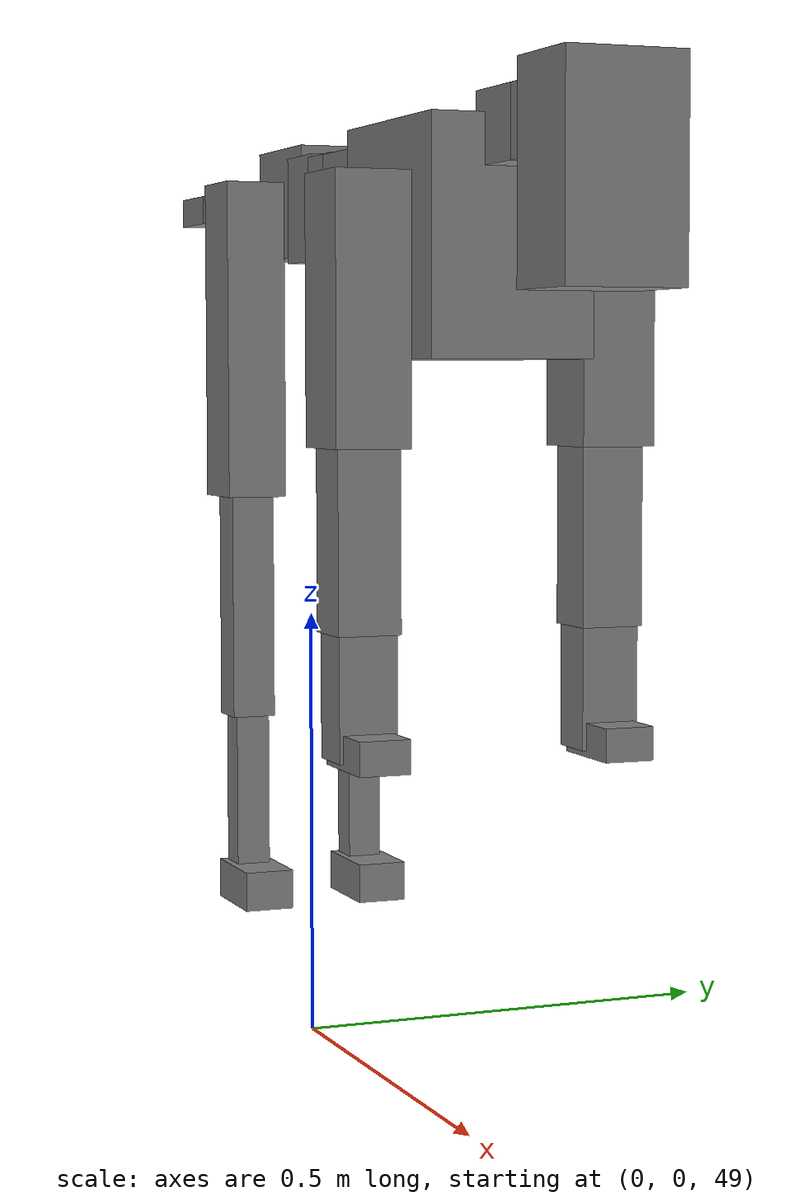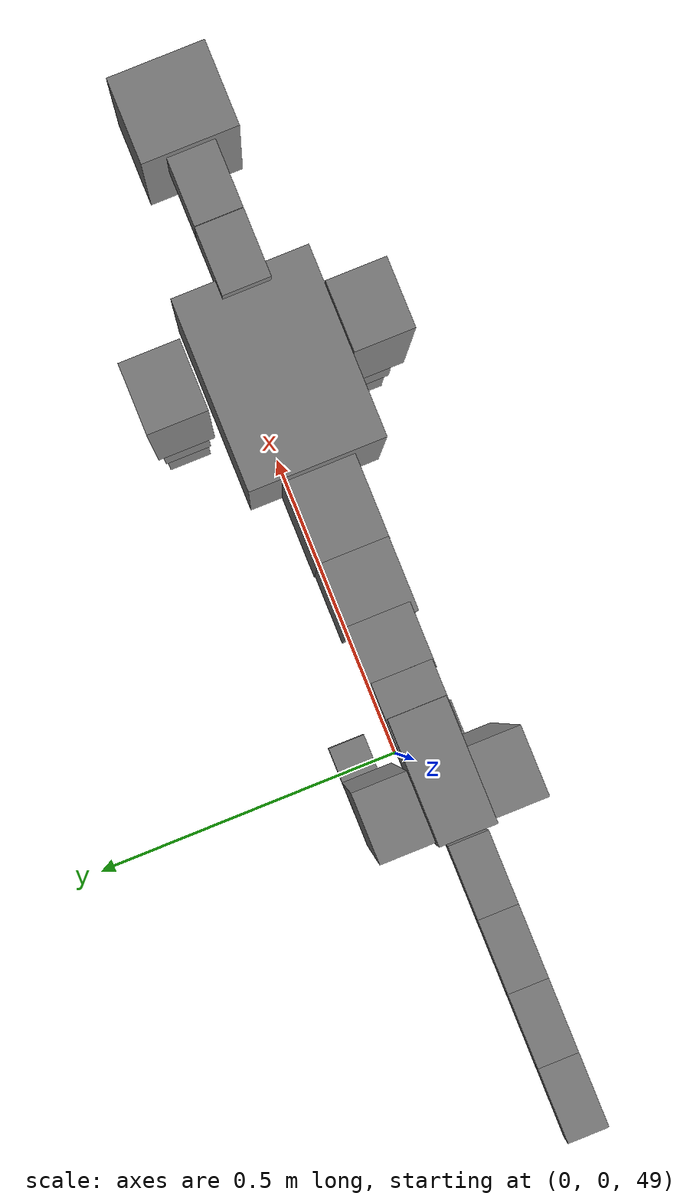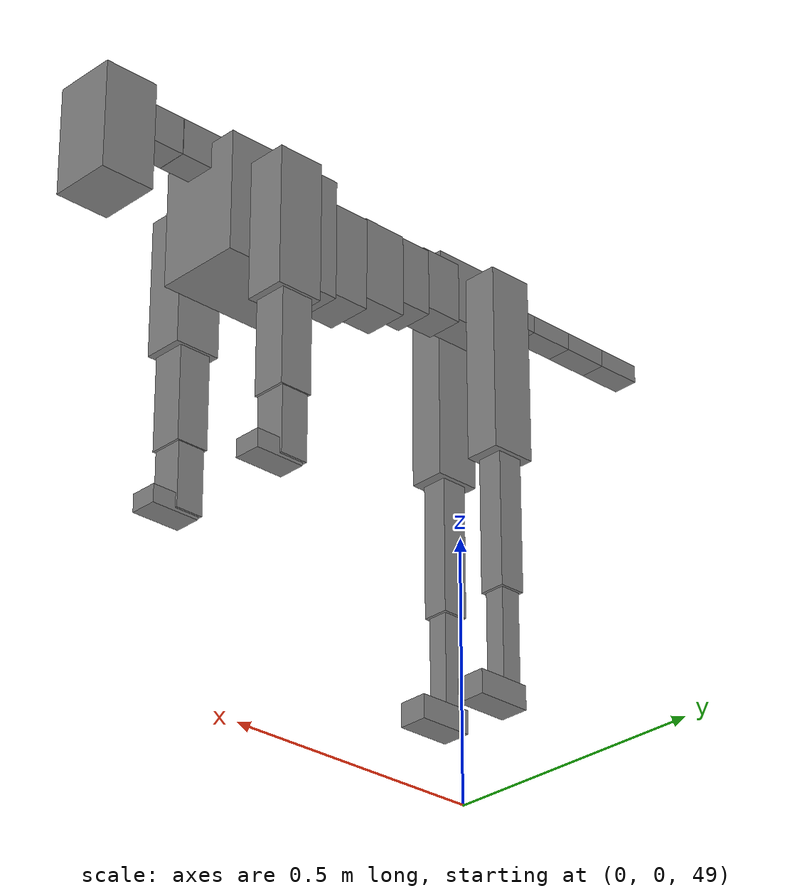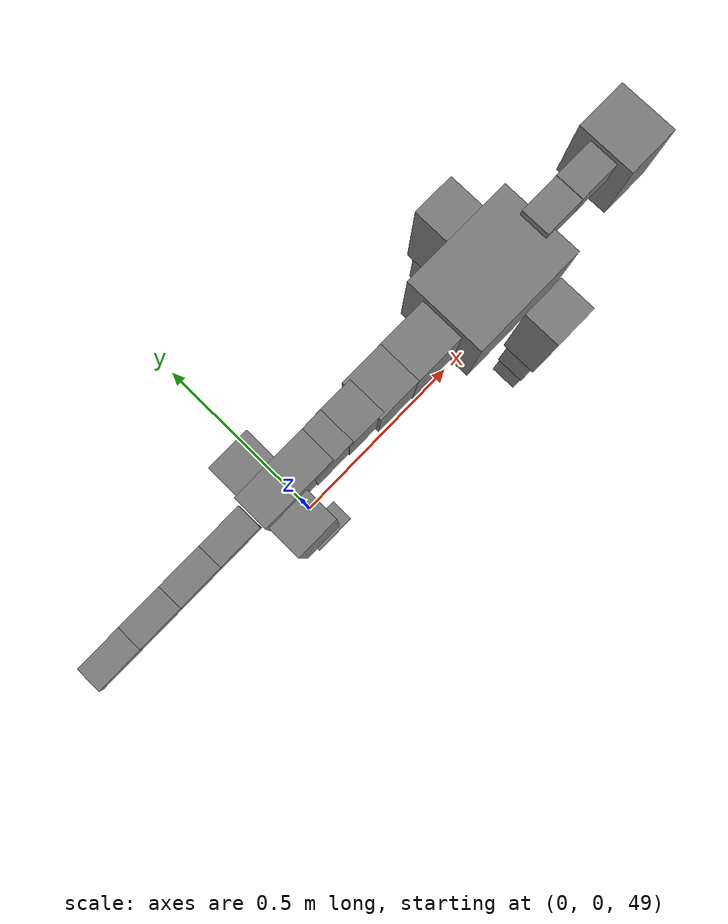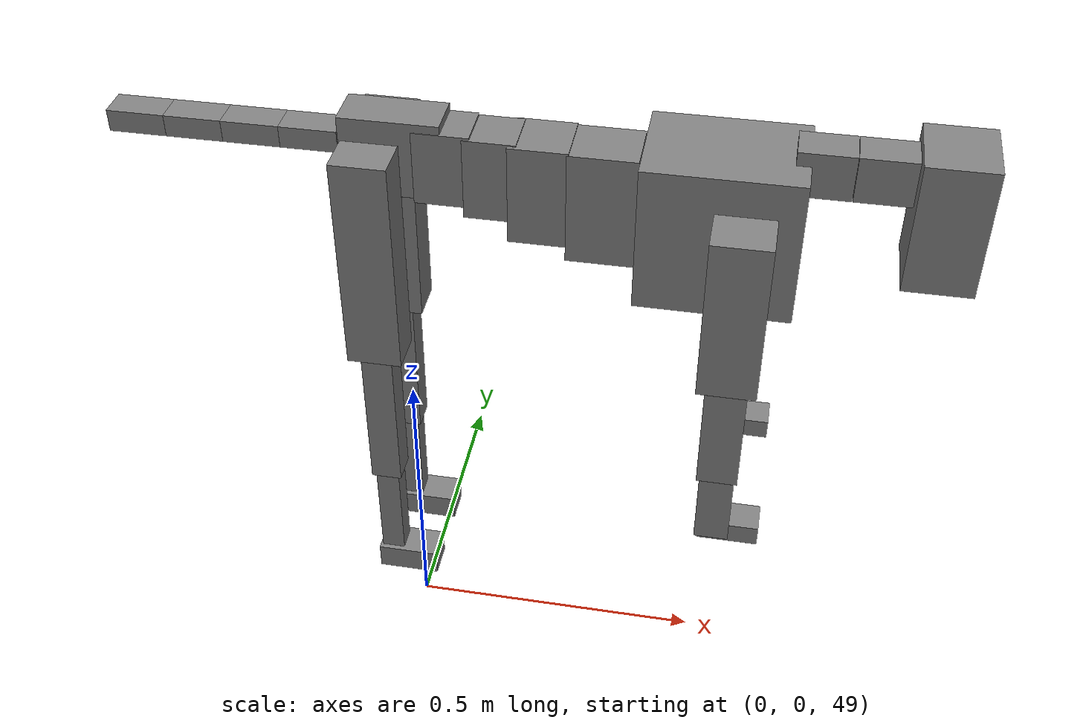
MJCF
<mujoco model="dog">

    <default>
        <joint armature="0.02" stiffness="1" damping="0.2" limited="true"/>
        <geom condim="3" friction="1 0.05 0.05" margin="0.01"/>
        <motor ctrllimited="true" ctrlrange="-1.0 1.0" forcelimited="true" gear="50"/>
    </default>

    <compiler inertiafromgeom="true" angle="radian"/>

    <option timestep="0.016" iterations="50" tolerance="1e-10" solver="Newton" jacobian="dense" cone="pyramidal"/>

    <size nconmax="20000" njmax="60000" nstack="5000000"/>
    <visual>
        <map force="0.1" zfar="30"/>
        <rgba haze="0.15 0.25 0.35 1"/>
        <quality shadowsize="2048"/>
        <global offwidth="800" offheight="800"/>
    </visual>

    <asset>
        <texture type="skybox" builtin="gradient" rgb1="0.3 0.5 0.7" rgb2="0 0 0" width="512" height="512"/>
        <texture name="texplane" type="2d" builtin="checker" rgb1=".2 .3 .4" rgb2=".1 0.15 0.2" width="512" height="512"
                 mark="cross" markrgb=".8 .8 .8"/>
        <texture name="texgeom" type="cube" builtin="flat" mark="cross" width="127" height="1278" rgb1="0.8 0.6 0.4"
                 rgb2="0.8 0.6 0.4" markrgb="1 1 1" random="0.01"/>

        <material name="matplane" reflectance="0.3" texture="texplane" texrepeat="1 1" texuniform="true"/>
        <material name="matgeom" texture="texgeom" texuniform="true" rgba="0.8 0.6 .4 1"/>
    </asset>

    <worldbody>
        <geom name="floor" pos="0 0 0" size="0 0 .25" type="plane" material="matplane" condim="3"/>

        <light directional="false" diffuse=".2 .2 .2" specular="0 0 0" pos="0 0 5" dir="0 0 -1" castshadow="false"/>
        <light mode="targetbodycom" target="torso" directional="false" diffuse=".8 .8 .8" specular="0.3 0.3 0.3"
               pos="0 0 4.0" dir="0 0 -1"/>

        <body name="root" pos="0 0 50">
            <freejoint name="root_1"/>
            <geom type="box" pos="0 0 -0.02" size="0.0774  0.0358  0.063" density="2030"/>

            <body name="spine1" pos="0.054 0 0">
                <joint name="spine1_y" axis="0 1 0" range="0 0.7" limited="true"/>
                <geom type="box" pos="0.02375 0 -0.03" size="0.04375  0.0375  0.05985" density="2030"/>

                <body name="spine2" pos="0.0612 0 0">
                    <joint name="spine2_y" axis="0 1 0" range="-0.15 0.15" limited="true"/>
                    <geom type="box" pos="0.03555  0  -0.04" size="0.04055  0.039  0.06615" density="2030"/>

                    <body name="spine3" pos="0.0730 0 0">
                        <joint name="spine3_y" axis="0 1 0" range="-0.15 0.15" limited="true"/>
                        <geom type="box" pos="0.03555  0  -0.057" size="0.04555  0.0445  0.081" density="2030"/>

                        <body name="spine4" pos="0.0780 0 0">
                            <joint name="spine4_y" axis="0 1 0" range="-0.15 0.15" limited="true"/>
                            <geom type="box" pos="0.05265  0  -0.07" size="0.05265  0.045  0.09135" density="2030"/>

                            <body name="torso" pos="0.1082 0 0">
                                <joint name="torso_y" axis="0 1 0" range="-0.15 0.15" limited="true"/>
                                <geom type="box" pos="0.11925  0  -0.085" size="0.11925  0.085  0.11745"
                                      density="2030"/>

                                <body name="neck1" pos="0.2160  0   0.0180">
                                    <joint name="neck1_y" axis="0 1 0" range="-1.2  -1" limited="true"/>
                                    <geom type="box" pos="0.0423  0  0" size="0.0423  0.03  0.036" density="2325"/>

                                    <body name="neck2" pos="0.0853  0  0">
                                        <joint name="neck2_y" axis="0 1 0" range="0.1  0" limited="true"/>
                                        <geom type="box" pos="0.0423  0  0" size="0.0423  0.03  0.036" density="2325"/>

                                        <body name="head" pos="0.0853  0  0">
                                            <joint name="head_y" axis="0 1 0" range="-0.3  -0.2" limited="true"/>
                                            <geom type="box" pos="0.0531  0  -0.055" size="0.0531  0.06  0.1044"
                                                  density="4030"/>

                                        </body>
                                    </body>
                                </body>

                                <body name="front_shoulder" pos="0.156  0   -0.0480">
                                    <joint name="front_shoulder_y" axis="0 1 0" range="-1 1.5" limited="true"/>
                                    <geom type="box" pos="0 0.13 -0.1074" size="0.0453  0.0387  0.1341" density="1158"/>
                                    <geom type="box" pos="0 -0.13 -0.1074" size="0.0453  0.0387  0.1341"
                                          density="1158"/>

                                    <body name="front_elbow" pos="0  0  -0.2149">
                                        <joint name="front_elbow_y" axis="0 1 0" range="-2 0" limited="true"/>
                                        <geom type="box" pos="0 0.13 -0.1044" size="0.0319  0.0326  0.1044"
                                              density="1081"/>
                                        <geom type="box" pos="0 -0.13 -0.1044" size="0.0319  0.0326  0.1044"
                                              density="1081"/>

                                        <body name="front_wrist" pos="0  0  -0.2088">
                                            <joint name="front_wrist_y" axis="0 1 0" range="-0.2 0" limited="true"/>
                                            <geom type="box" pos="0 0.13 -0.0561" size="0.0272  0.0302  0.0692"
                                                  density="1664"/>
                                            <geom type="box" pos="0 -0.13 -0.0561" size="0.0272  0.0302  0.0692"
                                                  density="1664"/>

                                            <body name="front_finger_end" pos="0  0  -0.1122">
                                                <joint name="front_finger_y" axis="0 1 0" range="-0.4 1"
                                                       limited="true"/>
                                                <geom type="box" pos="0.0262  0.13  -0.0022"
                                                      size="0.0481  0.0262  0.0172" density="1515"/>
                                                <geom type="box" pos="0.0262  -0.13  -0.0022"
                                                      size="0.0481  0.0262  0.0172" density="1515"/>

                                            </body>

                                        </body>
                                    </body>
                                </body>

                            </body>
                        </body>
                    </body>
                </body>
            </body>

            <body name="back_hip" pos="-0.03 0 -0.018">
                <joint name="back_hip_y" axis="0 1 0" range="-1.5 0.3" limited="true"/>
                <geom type="box" pos="0 0.07 -0.1595" size="0.0440  0.0345  0.1823" density="1154"/>
                <geom type="box" pos="0 -0.07 -0.1595" size="0.0440  0.0345  0.1823" density="1154"/>

                <body name="back_knee" pos="0  0  -0.3189">
                    <joint name="back_knee_y" axis="0 1 0" range="0 2.8" limited="true"/>
                    <geom type="box" pos="0 0.07 -0.1337" size="0.0253  0.0250  0.1493" density="1227"/>
                    <geom type="box" pos="0 -0.07 -0.1337" size="0.0253  0.0250  0.1493" density="1227"/>

                    <body name="back_ankle" pos="0  0  -0.2674">
                        <joint name="back_ankle_y" axis="0 1 0" range="-2.2 0" limited="true"/>
                        <geom type="box" pos="0 0.07 -0.1034" size="0.0195  0.0195  0.1146" density="1284"/>
                        <geom type="box" pos="0 -0.07 -0.1034" size="0.0195  0.0195  0.1146" density="1284"/>

                        <body name="back_toe_end" pos="0  0  -0.2068">
                            <joint name="back_toe_y" axis="0 1 0" range="-0.4 1" limited="true"/>
                            <geom type="box" pos="0.0283  0.07  -0.0076" size="0.0520  0.0283  0.0226" density="1515"/>
                            <geom type="box" pos="0.0283  -0.07  -0.0076" size="0.0520  0.0283  0.0226" density="1515"/>

                        </body>
                    </body>
                </body>
            </body>

            <body name="tail1" pos="-0.074 0 -0.006">
                <joint name="tail1_y" axis="0 1 0" range="-0.2 0.2" limited="true"/>
                <geom type="box" pos="-0.0536  0  0" size="0.045  0.025  0.0175" density="1587"/>

                <body name="tail2" pos="-0.09 0 0">
                    <joint name="tail2_y" axis="0 1 0" range="-0.2 0.2" limited="true"/>
                    <geom type="box" pos="-0.0536  0  0" size="0.045  0.025  0.0175" density="1587"/>

                    <body name="tail3" pos="-0.09 0 0">
                        <joint name="tail3_y" axis="0 1 0" range="-0.2 0.2" limited="true"/>
                        <geom type="box" pos="-0.0536  0  0" size="0.045  0.025  0.0175" density="1587"/>

                        <body name="tail4" pos="-0.09 0 0">
                            <joint name="tail4_y" axis="0 1 0" range="-0.2 0.2" limited="true"/>
                            <geom type="box" pos="-0.0536  0  0" size="0.045  0.025  0.0175" density="1587"/>

                        </body>
                    </body>
                </body>
            </body>
        </body>
    </worldbody>

    <actuator>
        <motor joint="spine1_y" forcerange="-150 150     "/>
        <motor joint="spine2_y" forcerange="-150 150     "/>
        <motor joint="spine3_y" forcerange="-150 150     "/>
        <motor joint="spine4_y" forcerange="-150 150     "/>
        <motor joint="torso_y" forcerange="-150 150     "/>
        <motor joint="neck1_y" forcerange="-100 100       "/>
        <motor joint="neck2_y" forcerange="-100 100       "/>
        <motor joint="head_y" forcerange="-150 150       "/>
        <motor joint="front_shoulder_y" forcerange="-169.89 188.11"/>
        <motor joint="front_elbow_y" forcerange="-155.82 181.25"/>
        <motor joint="front_wrist_y" forcerange="-130.10 111.34"/>
        <motor joint="front_finger_y" forcerange="-59.96 39.87"/>
        <motor joint="back_hip_y" forcerange="-290.85 369.57"/>
        <motor joint="back_knee_y" forcerange="-291.77 271.62"/>
        <motor joint="back_angle_y" forcerange="-143.11 68.51"/>
        <motor joint="back_toe_y" forcerange="-60.98 85.76"/>
        <motor joint="tail1_y" forcerange="-50 50     "/>
        <motor joint="tail2_y" forcerange="-50 50     "/>
        <motor joint="tail3_y" forcerange="-50 50     "/>
        <motor joint="tail4_y" forcerange="-50 50     "/>
    </actuator>
</mujoco>
